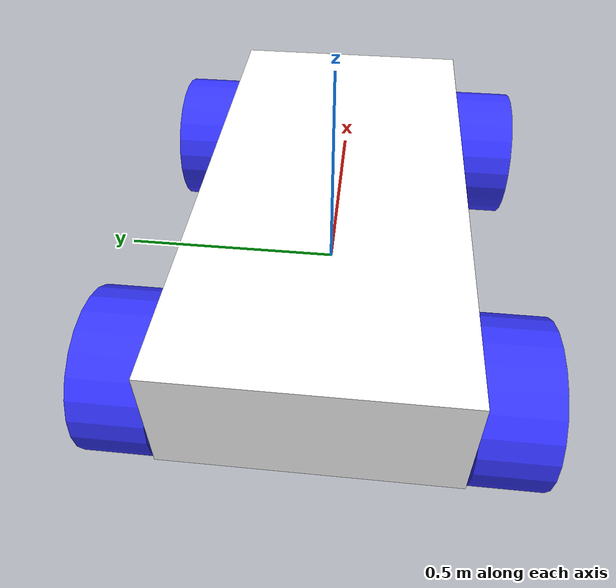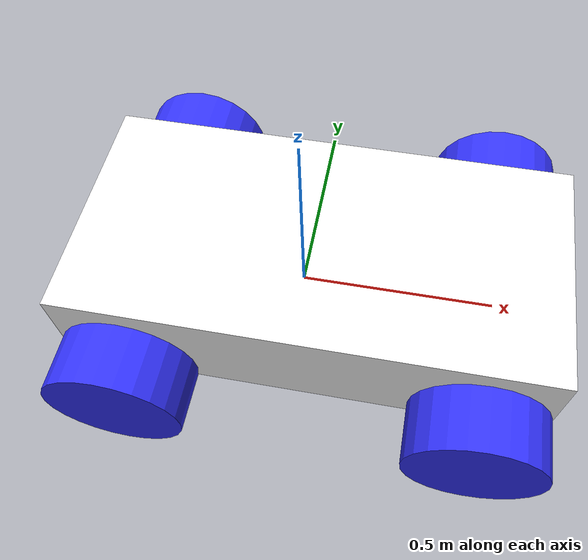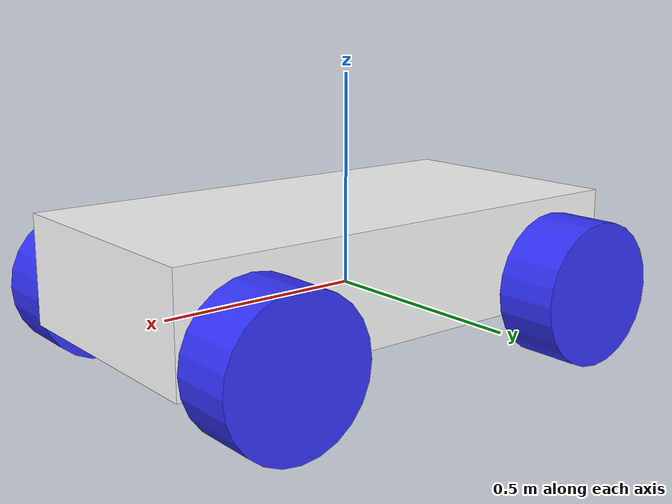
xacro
<?xml version="1.0"?>
<robot xmlns:xacro="http://www.ros.org/wiki/xacro">

<xacro:include filename="inertia_macros.xacro"/>
    <material name="white">
        <color rgba="1 1 1 1"/>
    </material>

    <material name="orange">
        <color rgba="1 0.3 0.1 1"/>
    </material>

    <material name="blue">
        <color rgba="0.2 0.2 1 1"/>
    </material>

    <material name="black">
        <color rgba="0 0 0 1"/>
    </material>

    <link name="base_link">

    </link>

    <joint name="chassis_joint" type="fixed">
        <parent link="base_link"/>
        <child link="chassis"/>
        <origin xyz="-0.1 0 0"/>
    </joint>

    <link name="chassis">
        <visual>
            <origin xyz="0.15 0 0.075" rpy="0 0 0"/>
            <geometry>
                <box size="1.2 0.6 0.26"/>
            </geometry>
            <material name="white"/>
        </visual>
        <collision>
            <origin xyz="0.15 0 0.075" rpy="0 0 0"/>
            <geometry>
                <box size="1.2 0.6 0.26"/>
            </geometry>
        </collision>
        <xacro:inertial_box mass="0.5" x="1.2" y="0.6" z="0.26">
            <origin xyz="0.15 0 0.075" rpy="0 0 0"/>
        </xacro:inertial_box>
    </link>

    <gazebo reference="chassis">
        <material>Gazebo/White</material>
    </gazebo>

    <!-- LEFT WHEEL -->

    <joint name="left_wheel_joint" type="continuous">
        <parent link="base_link"/>
        <child link="left_wheel"/>
        <origin xyz="-0.38 0.38 0" rpy="-${pi/2} 0 0"/>
        <axis xyz="0 0 1"/>
    </joint>

    <link name="left_wheel">
        <visual>
            <geometry>
                <cylinder length="0.15" radius="0.17"/>
            </geometry>
            <material name="blue"/>
        </visual>
        <collision>
            <geometry>
                <cylinder radius="0.17" length="0.15"/>
            </geometry>
        </collision>
        <xacro:inertial_cylinder mass="0.1" length="0.15" radius="0.17">
            <origin xyz="0 0 0" rpy="0 0 0"/>
        </xacro:inertial_cylinder>
    </link>

    <gazebo reference="left_wheel">
        <material>Gazebo/Blue</material>
        <mu1 value="10.0"/>
        <mu2 value="10.0"/>
        <kp value="10000000.0" />
        <kd value="1.0" />
    </gazebo>

    <!-- RIGHT WHEEL -->

    <joint name="right_wheel_joint" type="continuous">
        <parent link="base_link"/>
        <child link="right_wheel"/>
        <origin xyz="-0.38 -0.38 0" rpy="${pi/2} 0 0"/>
        <axis xyz="0 0 -1"/>
    </joint>

    <link name="right_wheel">
        <visual>
            <geometry>
                <cylinder length="0.15" radius="0.17"/>
            </geometry>
            <material name="blue"/>
        </visual>
        <collision>
            <geometry>
                <cylinder radius="0.17" length="0.15"/>
            </geometry>
        </collision>
        <xacro:inertial_cylinder mass="0.1" length="0.15" radius="0.17">
            <origin xyz="0 0 0" rpy="0 0 0"/>
        </xacro:inertial_cylinder>
    </link>

    <gazebo reference="right_wheel">
        <material>Gazebo/Blue</material>
        <mu1 value="10.0"/>
        <mu2 value="10.0"/>
        <kp value="10000000.0" />
        <kd value="1.0" />
    </gazebo>

    <!-- BACK LEFT WHEEL -->

    <joint name="back_left_wheel_joint" type="continuous">
        <parent link="base_link"/>
        <child link="back_left_wheel"/>
        <origin xyz="0.48 0.38 0" rpy="-${pi/2} 0 0"/>
        <axis xyz="0 0 1"/>
    </joint>

    <link name="back_left_wheel">
        <visual>
            <geometry>
                <cylinder length="0.15" radius="0.17"/>
            </geometry>
            <material name="blue"/>
        </visual>
        <collision>
            <geometry>
                <cylinder radius="0.17" length="0.15"/>
            </geometry>
        </collision>
        <xacro:inertial_cylinder mass="0.1" length="0.15" radius="0.17">
            <origin xyz="0 0 0" rpy="0 0 0"/>
        </xacro:inertial_cylinder>
    </link>

    <gazebo reference="back_left_wheel">
        <material>Gazebo/Blue</material>
        <mu1 value="10.0"/>
        <mu2 value="10.0"/>
        <kp value="10000000.0" />
        <kd value="1.0" />
    </gazebo>

    <!-- BACK RIGHT WHEEL -->

    <joint name="back_right_wheel_joint" type="continuous">
        <parent link="base_link"/>
        <child link="back_right_wheel"/>
        <origin xyz="0.48 -0.38 0" rpy="${pi/2} 0 0"/>
        <axis xyz="0 0 -1"/>
    </joint>

    <link name="back_right_wheel">
        <visual>
            <geometry>
                <cylinder length="0.15" radius="0.17"/>
            </geometry>
            <material name="blue"/>
        </visual>
        <collision>
            <geometry>
                <cylinder radius="0.17" length="0.15"/>
            </geometry>
        </collision>
        <xacro:inertial_cylinder mass="0.1" length="0.15" radius="0.17">
            <origin xyz="0 0 0" rpy="0 0 0"/>
        </xacro:inertial_cylinder>
    </link>

    <gazebo reference="back_right_wheel">
        <material>Gazebo/Blue</material>
        <mu1 value="10.0"/>
        <mu2 value="10.0"/>
        <kp value="10000000.0" />
        <kd value="1.0" />
    </gazebo>

</robot>
